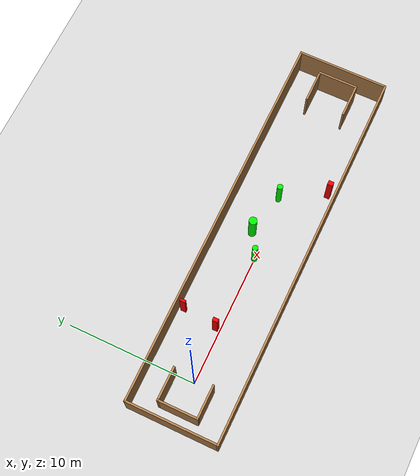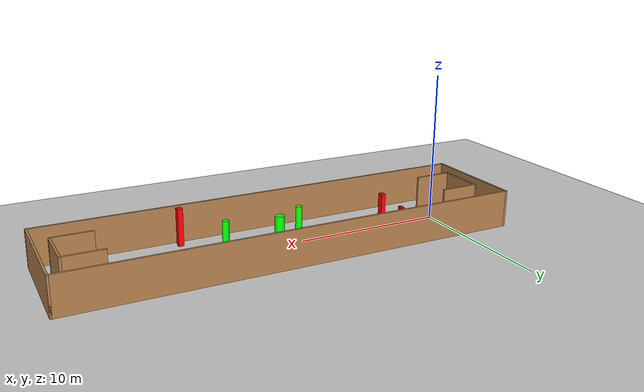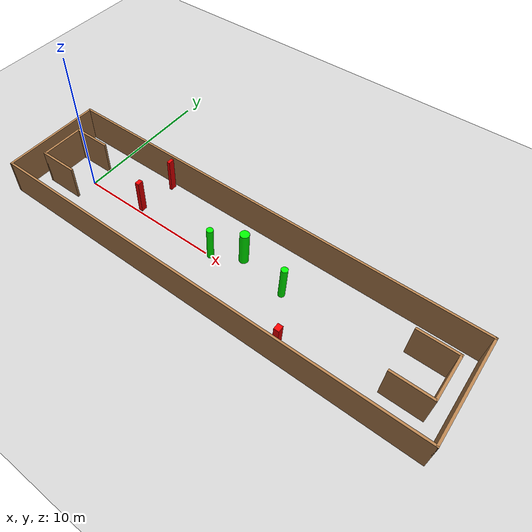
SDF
<sdf version="1.7">
 <world name="default">
  <light name="sun" type="directional">
   <pose>0 0 10 0 -0 0</pose>
   <diffuse>0.8 0.8 0.8 1</diffuse>
   <specular>0.2 0.2 0.2 1</specular>
   <attenuation>
    <range>1000</range>
    <constant>0.9</constant>
    <linear>0.01</linear>
    <quadratic>0.001</quadratic>
   </attenuation>
   <direction>-0.5 0.1 -0.9</direction>
   <spot><inner_angle>0</inner_angle><outer_angle>0</outer_angle><falloff>0</falloff></spot>
  </light>
  <model name="ground_plane">
   <static>1</static>
   <link name="link">
    <collision name="collision">
     <geometry><plane><normal>0 0 1</normal><size>100 100</size></plane></geometry>
     <surface>
      <contact><collide_bitmask>65535</collide_bitmask></contact>
      <friction><ode><mu>100</mu><mu2>50</mu2></ode></friction>
     </surface>
    </collision>
    <visual name="visual">
     <cast_shadows>0</cast_shadows>
     <geometry><plane><normal>0 0 1</normal><size>100 100</size></plane></geometry>
     <material>
      <script><uri>file://media/materials/scripts/gazebo.material</uri><name>Gazebo/Grey</name></script>
     </material>
    </visual>
   </link>
  </model>
  <gravity>0 0 -9.8</gravity>
  <magnetic_field>6e-06 2.3e-05 -4.2e-05</magnetic_field>
  <atmosphere type="adiabatic"/>
  <physics type="ode">
   <max_step_size>0.001</max_step_size>
   <real_time_factor>1</real_time_factor>
   <real_time_update_rate>1000</real_time_update_rate>
  </physics>
  <scene><ambient>0.4 0.4 0.4 1</ambient><background>0.7 0.7 0.7 1</background><shadows>1</shadows></scene>
  <spherical_coordinates>
   <surface_model>EARTH_WGS84</surface_model>
   <latitude_deg>0</latitude_deg>
   <longitude_deg>0</longitude_deg>
   <elevation>0</elevation>
   <heading_deg>0</heading_deg>
  </spherical_coordinates>
  <model name="my_base_walls">
   <link name="Wall_0">
    <collision name="Wall_0_Collision">
     <geometry><box><size>7.15 0.15 2.5</size></box></geometry>
     <pose>0 0 1.25 0 -0 0</pose>
    </collision>
    <visual name="Wall_0_Visual">
     <pose>0 0 1.25 0 -0 0</pose>
     <geometry><box><size>7.15 0.15 2.5</size></box></geometry>
     <material>
      <script><uri>file://media/materials/scripts/gazebo.material</uri><name>Gazebo/Wood</name></script>
      <ambient>1 1 1 1</ambient>
     </material>
     <meta><layer>0</layer></meta>
    </visual>
    <pose>-15 0 0 0 -0 1.5708</pose>
   </link>
   <link name="Wall_10">
    <collision name="Wall_10_Collision">
     <geometry><box><size>2.65 0.15 2.5</size></box></geometry>
     <pose>0 0 1.25 0 -0 0</pose>
    </collision>
    <visual name="Wall_10_Visual">
     <pose>0 0 1.25 0 -0 0</pose>
     <geometry><box><size>2.65 0.15 2.5</size></box></geometry>
     <material>
      <script><uri>file://media/materials/scripts/gazebo.material</uri><name>Gazebo/Wood</name></script>
      <ambient>1 1 1 1</ambient>
     </material>
     <meta><layer>0</layer></meta>
    </visual>
    <pose>-12.75 -1.5 0 0 -0 0</pose>
   </link>
   <link name="Wall_12">
    <collision name="Wall_12_Collision">
     <geometry><box><size>2.65 0.15 2.5</size></box></geometry>
     <pose>0 0 1.25 0 -0 0</pose>
    </collision>
    <visual name="Wall_12_Visual">
     <pose>0 0 1.25 0 -0 0</pose>
     <geometry><box><size>2.65 0.15 2.5</size></box></geometry>
     <material>
      <script><uri>file://media/materials/scripts/gazebo.material</uri><name>Gazebo/Wood</name></script>
      <ambient>1 1 1 1</ambient>
     </material>
     <meta><layer>0</layer></meta>
    </visual>
    <pose>-12.75 1.5 0 0 -0 0</pose>
   </link>
   <link name="Wall_14">
    <collision name="Wall_14_Collision">
     <geometry><box><size>3.15 0.15 2.5</size></box></geometry>
     <pose>0 0 1.25 0 -0 0</pose>
    </collision>
    <visual name="Wall_14_Visual">
     <pose>0 0 1.25 0 -0 0</pose>
     <geometry><box><size>3.15 0.15 2.5</size></box></geometry>
     <material>
      <script><uri>file://media/materials/scripts/gazebo.material</uri><name>Gazebo/Wood</name></script>
      <ambient>1 1 1 1</ambient>
     </material>
     <meta><layer>0</layer></meta>
    </visual>
    <pose>14 0 0 0 -0 -1.5708</pose>
   </link>
   <link name="Wall_15">
    <collision name="Wall_15_Collision">
     <geometry><box><size>2.65 0.15 2.5</size></box></geometry>
     <pose>0 0 1.25 0 -0 0</pose>
    </collision>
    <visual name="Wall_15_Visual">
     <pose>0 0 1.25 0 -0 0</pose>
     <geometry><box><size>2.65 0.15 2.5</size></box></geometry>
     <material>
      <script><uri>file://media/materials/scripts/gazebo.material</uri><name>Gazebo/Wood</name></script>
      <ambient>1 1 1 1</ambient>
     </material>
     <meta><layer>0</layer></meta>
    </visual>
    <pose>12.75 -1.5 0 0 -0 3.14159</pose>
   </link>
   <link name="Wall_17">
    <collision name="Wall_17_Collision">
     <geometry><box><size>2.65 0.15 2.5</size></box></geometry>
     <pose>0 0 1.25 0 -0 0</pose>
    </collision>
    <visual name="Wall_17_Visual">
     <pose>0 0 1.25 0 -0 0</pose>
     <geometry><box><size>2.65 0.15 2.5</size></box></geometry>
     <material>
      <script><uri>file://media/materials/scripts/gazebo.material</uri><name>Gazebo/Wood</name></script>
      <ambient>1 1 1 1</ambient>
     </material>
     <meta><layer>0</layer></meta>
    </visual>
    <pose>12.75 1.5 0 0 -0 3.14159</pose>
   </link>
   <link name="Wall_2">
    <collision name="Wall_2_Collision">
     <geometry><box><size>30.15 0.15 2.5</size></box></geometry>
     <pose>0 0 1.25 0 -0 0</pose>
    </collision>
    <visual name="Wall_2_Visual">
     <pose>0 0 1.25 0 -0 0</pose>
     <geometry><box><size>30.15 0.15 2.5</size></box></geometry>
     <material>
      <script><uri>file://media/materials/scripts/gazebo.material</uri><name>Gazebo/Wood</name></script>
      <ambient>1 1 1 1</ambient>
     </material>
     <meta><layer>0</layer></meta>
    </visual>
    <pose>-0 -3.5 0 0 -0 0</pose>
   </link>
   <link name="Wall_4">
    <collision name="Wall_4_Collision">
     <geometry><box><size>30.15 0.15 2.5</size></box></geometry>
     <pose>0 0 1.25 0 -0 0</pose>
    </collision>
    <visual name="Wall_4_Visual">
     <pose>0 0 1.25 0 -0 0</pose>
     <geometry><box><size>30.15 0.15 2.5</size></box></geometry>
     <material>
      <script><uri>file://media/materials/scripts/gazebo.material</uri><name>Gazebo/Wood</name></script>
      <ambient>1 1 1 1</ambient>
     </material>
     <meta><layer>0</layer></meta>
    </visual>
    <pose>-0 3.5 0 0 -0 0</pose>
   </link>
   <link name="Wall_6">
    <collision name="Wall_6_Collision">
     <geometry><box><size>7.15 0.15 2.5</size></box></geometry>
     <pose>0 0 1.25 0 -0 0</pose>
    </collision>
    <visual name="Wall_6_Visual">
     <pose>0 0 1.25 0 -0 0</pose>
     <geometry><box><size>7.15 0.15 2.5</size></box></geometry>
     <material>
      <script><uri>file://media/materials/scripts/gazebo.material</uri><name>Gazebo/Wood</name></script>
      <ambient>1 1 1 1</ambient>
     </material>
     <meta><layer>0</layer></meta>
    </visual>
    <pose>15 0 0 0 -0 -1.5708</pose>
   </link>
   <link name="Wall_9">
    <collision name="Wall_9_Collision">
     <geometry><box><size>3.15 0.15 2.5</size></box></geometry>
     <pose>0 0 1.25 0 -0 0</pose>
    </collision>
    <visual name="Wall_9_Visual">
     <pose>0 0 1.25 0 -0 0</pose>
     <geometry><box><size>3.15 0.15 2.5</size></box></geometry>
     <material>
      <script><uri>file://media/materials/scripts/gazebo.material</uri><name>Gazebo/Wood</name></script>
      <ambient>1 1 1 1</ambient>
     </material>
     <meta><layer>0</layer></meta>
    </visual>
    <pose>-14 0 0 0 -0 -1.5708</pose>
   </link>
   <static>1</static>
   <pose>11.5 0 0 0 -0 0</pose>
  </model>
  <model name="cylinder1">
   <static>1</static>
   <link name="link">
    <inertial>
     <mass>1</mass>
     <inertia><ixx>0.5</ixx><ixy>0</ixy><ixz>0</ixz><iyy>0.5</iyy><iyz>0</iyz><izz>1</izz></inertia>
    </inertial>
    <collision name="collision">
     <geometry><cylinder><radius>0.21666381981152372</radius><length>2.5</length></cylinder></geometry>
    </collision>
    <visual name="visual">
     <geometry><cylinder><radius>0.21666381981152372</radius><length>2.5</length></cylinder></geometry>
     <material>
      <ambient>0 1 0 1</ambient>
      <diffuse>0 1 0 1</diffuse>
      <specular>0.1 0.1 0.1 1</specular>
      <emissive>0 0 0 0</emissive>
     </material>
    </visual>
   </link>
   <pose>15.453823010443662 0.38121488042226304 1.25 0 0 0</pose>
  </model>
  <model name="cylinder2">
   <static>1</static>
   <link name="link">
    <inertial>
     <mass>1</mass>
     <inertia><ixx>0.5</ixx><ixy>0</ixy><ixz>0</ixz><iyy>0.5</iyy><iyz>0</iyz><izz>1</izz></inertia>
    </inertial>
    <collision name="collision">
     <geometry><cylinder><radius>0.2173597279492484</radius><length>2.5</length></cylinder></geometry>
    </collision>
    <visual name="visual">
     <geometry><cylinder><radius>0.2173597279492484</radius><length>2.5</length></cylinder></geometry>
     <material>
      <ambient>0 1 0 1</ambient>
      <diffuse>0 1 0 1</diffuse>
      <specular>0.1 0.1 0.1 1</specular>
      <emissive>0 0 0 0</emissive>
     </material>
    </visual>
   </link>
   <pose>10.319419451581613 0.05045574351005033 1.25 0 0 0</pose>
  </model>
  <model name="cylinder3">
   <static>1</static>
   <link name="link">
    <inertial>
     <mass>1</mass>
     <inertia><ixx>0.5</ixx><ixy>0</ixy><ixz>0</ixz><iyy>0.5</iyy><iyz>0</iyz><izz>1</izz></inertia>
    </inertial>
    <collision name="collision">
     <geometry><cylinder><radius>0.30972503877657226</radius><length>2.5</length></cylinder></geometry>
    </collision>
    <visual name="visual">
     <geometry><cylinder><radius>0.30972503877657226</radius><length>2.5</length></cylinder></geometry>
     <material>
      <ambient>0 1 0 1</ambient>
      <diffuse>0 1 0 1</diffuse>
      <specular>0.1 0.1 0.1 1</specular>
      <emissive>0 0 0 0</emissive>
     </material>
    </visual>
   </link>
   <pose>12.150311480932654 1.064720361649008 1.25 0 0 0</pose>
  </model>
  <model name="box1">
   <static>1</static>
   <link name="link">
    <inertial>
     <mass>1</mass>
     <inertia><ixx>0.083</ixx><ixy>0</ixy><ixz>0</ixz><iyy>0.083</iyy><iyz>0</iyz><izz>0.083</izz></inertia>
    </inertial>
    <collision name="collision">
     <geometry><box><size>0.28289455345219905 0.4139887907475515 2.5</size></box></geometry>
    </collision>
    <visual name="visual">
     <geometry><box><size>0.28289455345219905 0.4139887907475515 2.5</size></box></geometry>
     <material>
      <ambient>1 0 0 1</ambient>
      <diffuse>1 0 0 1</diffuse>
      <specular>0.1 0.1 0.1 1</specular>
      <emissive>0 0 0 0</emissive>
     </material>
    </visual>
    <sensor name="my_contact" type="contact">
     <contact><collision>box_collision</collision><topic>__default_topic__</topic></contact>
    </sensor>
   </link>
   <pose>4.270450118566446 0.3532863019860275 1.25 0 0 0</pose>
  </model>
  <model name="box2">
   <static>1</static>
   <link name="link">
    <inertial>
     <mass>1</mass>
     <inertia><ixx>0.083</ixx><ixy>0</ixy><ixz>0</ixz><iyy>0.083</iyy><iyz>0</iyz><izz>0.083</izz></inertia>
    </inertial>
    <collision name="collision">
     <geometry><box><size>0.20026643057733728 0.4273627837993178 2.5</size></box></geometry>
    </collision>
    <visual name="visual">
     <geometry><box><size>0.20026643057733728 0.4273627837993178 2.5</size></box></geometry>
     <material>
      <ambient>1 0 0 1</ambient>
      <diffuse>1 0 0 1</diffuse>
      <specular>0.1 0.1 0.1 1</specular>
      <emissive>0 0 0 0</emissive>
     </material>
    </visual>
    <sensor name="my_contact" type="contact">
     <contact><collision>box_collision</collision><topic>__default_topic__</topic></contact>
    </sensor>
   </link>
   <pose>4.559932047397144 3.045283937111578 1.25 0 0 0</pose>
  </model>
  <model name="box3">
   <static>1</static>
   <link name="link">
    <inertial>
     <mass>1</mass>
     <inertia><ixx>0.083</ixx><ixy>0</ixy><ixz>0</ixz><iyy>0.083</iyy><iyz>0</iyz><izz>0.083</izz></inertia>
    </inertial>
    <collision name="collision">
     <geometry><box><size>0.3432892973227493 0.42158820100173133 2.5</size></box></geometry>
    </collision>
    <visual name="visual">
     <geometry><box><size>0.3432892973227493 0.42158820100173133 2.5</size></box></geometry>
     <material>
      <ambient>1 0 0 1</ambient>
      <diffuse>1 0 0 1</diffuse>
      <specular>0.1 0.1 0.1 1</specular>
      <emissive>0 0 0 0</emissive>
     </material>
    </visual>
    <sensor name="my_contact" type="contact">
     <contact><collision>box_collision</collision><topic>__default_topic__</topic></contact>
    </sensor>
   </link>
   <pose>17.290259005879214 -2.8799926969256835 1.25 0 0 0</pose>
  </model>
 </world>
</sdf>
